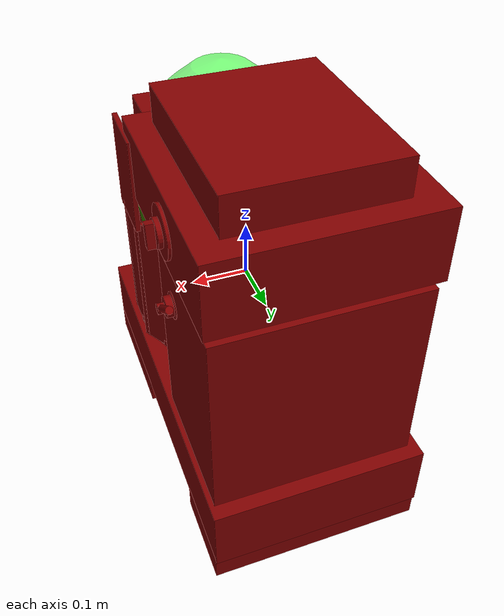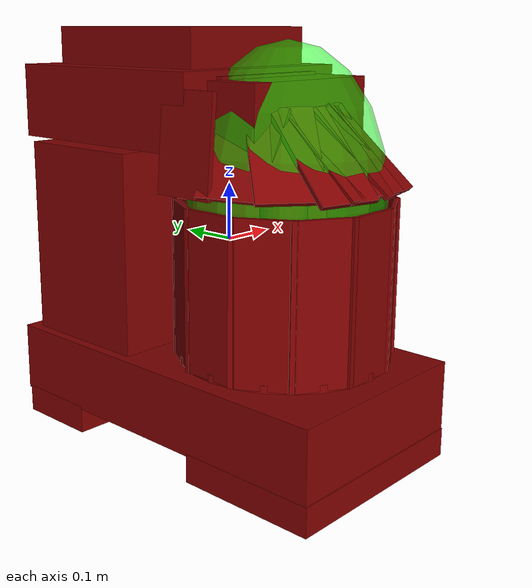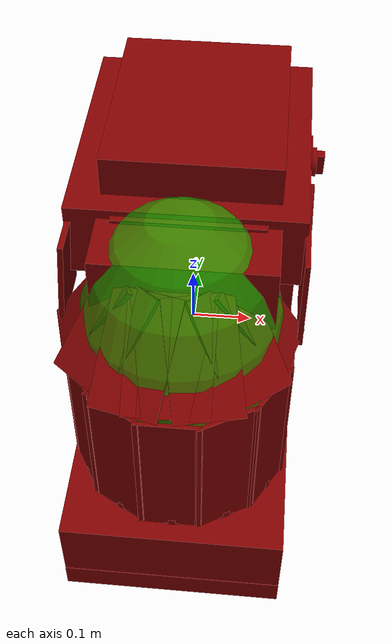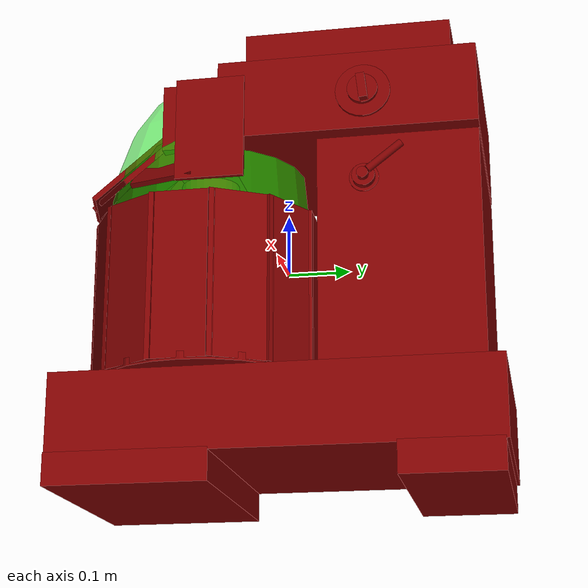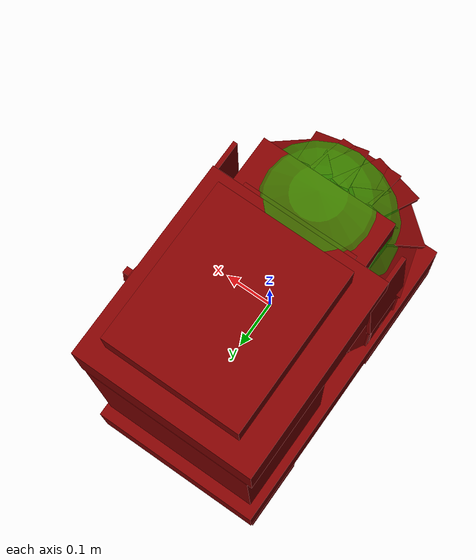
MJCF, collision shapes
<?xml version='1.0' encoding='UTF-8'?>
<mujoco model="model">
  <option timestep="0.002" gravity="0.0 0.0 -9.81"/>
  <compiler angle="radian"/>
  <asset>
    <mesh file="visuals/blender.obj" name="blender_vis"/>
    <mesh file="visuals/bowl.obj" name="bowl_vis"/>
    <mesh file="visuals/button_head_lock.obj" name="button_head_lock_vis"/>
    <mesh file="visuals/head.obj" name="head_vis"/>
    <mesh file="visuals/knob_speed.obj" name="knob_speed_vis"/>
    <mesh file="visuals/Body001.obj" name="Body001_vis"/>
    <texture file="visuals/T_BC001.png" name="Body001_material" type="2d"/>
    <material name="Body001_material" rgba="1 1 1 1.0" texture="Body001_material" shininess="0.5" specular="1"/>
    <texture file="visuals/T_BC001.png" name="bowl_material" type="2d"/>
    <material name="bowl_material" rgba="1 1 1 1.0" texture="bowl_material" shininess="0.5" specular="2"/>
    <texture file="visuals/T_BC001.png" name="button_head_lock_material" type="2d"/>
    <material name="button_head_lock_material" rgba="1 1 1 1.0" texture="button_head_lock_material" shininess="0.5" specular="0.3103448502657381"/>
    <texture file="visuals/T_BC001.png" name="head_material" type="2d"/>
    <material name="head_material" rgba="1 1 1 1.0" texture="head_material" shininess="0.5" specular="1"/>
    <texture file="visuals/T_BC001.png" name="blender_material" type="2d"/>
    <material name="blender_material" rgba="1 1 1 1.0" texture="blender_material" shininess="0.5" specular="2"/>
    <texture file="visuals/T_BC001.png" name="knob_speed_material" type="2d"/>
    <material name="knob_speed_material" rgba="1 1 1 1.0" texture="knob_speed_material" shininess="0.5" specular="0.3103448502657381"/>
  </asset>
  <default>
    <default class="visual">
      <geom conaffinity="0" contype="0" group="1" type="mesh"/>
    </default>
    <default class="collision">
      <geom group="0" rgba="0.5 0 0 0.5"/>
    </default>
    <default class="spawn">
      <geom group="0" rgba="1 1 1 0.5" contype="0" conaffinity="0"/>
      <site group="0" rgba="1 1 1 0.5"/>
    </default>
    <default class="region">
      <geom group="1" conaffinity="0" contype="0" rgba="0 1 0 0"/>
    </default>
  </default>
  <worldbody>
    <body>
      <body name="object">
        <geom mesh="Body001_vis" type="mesh" solimp="0.998 0.998 0.001" solref="0.001 1" friction="0.95 0.3 0.1" class="visual" material="Body001_material"/>
        <geom type="box" pos="-0.00267090 0.20007269 -0.01686699" size="0.17640313506126404 0.12497478723526001 0.17823748290538788" quat="1.0 0.0 0.0 0.0" class="collision"/>
        <geom type="box" pos="-0.00745859 0.00587236 -0.25808811" size="0.1895003318786621 0.34524524211883545 0.06353159993886948" quat="1.0 0.0 0.0 0.0" class="collision"/>
        <geom type="box" pos="-0.00745859 -0.21437366 -0.34285158" size="0.1895015686750412 0.1265411376953125 0.02537618577480316" quat="1.0 0.0 0.0 0.0" class="collision"/>
        <geom type="box" pos="-0.00745859 0.26803687 -0.34273580" size="0.1895015686750412 0.07797617465257645 0.02537618577480316" quat="1.0 0.0 0.0 0.0" class="collision"/>
        <geom type="cylinder" pos="0.16785968 0.14808685 0.09184745" size="0.022957801818847656 0.007240905426442623" quat="0.7071068286895752 -0.0 0.7071067690849304 0.0" class="collision"/>
        <body name="bowl">
          <geom mesh="bowl_vis" type="mesh" solimp="0.998 0.998 0.001" solref="0.001 1" friction="0.95 0.3 0.1" class="visual" material="bowl_material"/>
          <geom type="cylinder" pos="-0.00670028 -0.13489270 -0.17508253" size="0.1814662218093872 0.006578970700502396" quat="1.0 0.0 0.0 5.960464477539063e-08" class="collision"/>
          <geom type="box" pos="-0.00315750 0.04243004 -0.04335925" size="0.05319305509328842 0.0033536939881742 0.13530996441841125" quat="1.0 0.0 0.0 0.0" class="collision"/>
          <geom type="box" pos="0.08502930 0.01690198 -0.04335925" size="0.05319305881857872 0.0033536935225129128 0.13530996441841125" quat="0.9659258127212524 0.0 0.0 -0.2588191628456116" class="collision"/>
          <geom type="box" pos="0.14863720 -0.04929943 -0.04335924" size="0.05319305881857872 0.003353693289682269 0.13530994951725006" quat="0.866025447845459 0.0 0.0 -0.4999999701976776" class="collision"/>
          <geom type="box" pos="0.17062255 -0.13843551 -0.04335925" size="0.003353703301399946 0.05319298431277275 0.13530996441841125" quat="1.0 0.0 0.0 0.0" class="collision"/>
          <geom type="box" pos="0.14509442 -0.22662228 -0.04335925" size="0.05319305881857872 0.0033536935225129128 0.13530996441841125" quat="0.49999988079071045 0.0 0.0 -0.8660255074501038" class="collision"/>
          <geom type="box" pos="0.07889302 -0.29023018 -0.04335925" size="0.05319306254386902 0.003353693289682269 0.13530996441841125" quat="0.2588190734386444 0.0 0.0 -0.9659258127212524" class="collision"/>
          <geom type="box" pos="-0.01024313 -0.31221551 -0.04335925" size="0.05319305509328842 0.0033537084236741066 0.13530996441841125" quat="1.0 0.0 0.0 0.0" class="collision"/>
          <geom type="box" pos="-0.09842989 -0.28668737 -0.04335925" size="0.05319306254386902 0.0033536935225129128 0.13530996441841125" quat="0.2588190734386444 0.0 0.0 0.9659258127212524" class="collision"/>
          <geom type="box" pos="-0.16203778 -0.22048596 -0.04335925" size="0.05319305509328842 0.003353693289682269 0.13530996441841125" quat="0.5000000596046448 0.0 0.0 0.8660253882408142" class="collision"/>
          <geom type="box" pos="-0.18402312 -0.13134995 -0.04335925" size="0.003353716107085347 0.05319303646683693 0.13530996441841125" quat="1.0 0.0 0.0 0.0" class="collision"/>
          <geom type="box" pos="-0.15849491 -0.04316300 -0.04335925" size="0.05319305881857872 0.0033536935225129128 0.13530996441841125" quat="0.8660256266593933 0.0 0.0 0.49999964237213135" class="collision"/>
          <geom type="box" pos="-0.09229353 0.02044480 -0.04335925" size="0.05319305509328842 0.003353693289682269 0.13530996441841125" quat="0.9659258723258972 0.0 0.0 0.25881892442703247" class="collision"/>
          <geom name="reg_bowl" type="ellipsoid" pos="-0.00670028 -0.13489270 0.09177814" size="0.16452902555465698 0.16766422986984253 0.2566817104816437" rgba="0 1 0 0.5" class="region"/>
        </body>
        <body name="button_head_lock">
          <joint axis="-1.0 0.0 0.0" pos="0.18252964 0.14910948 0.09110717" limited="true" name="button_head_lock_joint" range="0.0 1.3089969389957472" type="hinge" damping="1" frictionloss="1" armature=".01" stiffness="0.05"/>
          <geom mesh="button_head_lock_vis" type="mesh" solimp="0.998 0.998 0.001" solref="0.001 1" friction="0.95 0.3 0.1" class="visual" material="button_head_lock_material"/>
          <geom class="collision" type="cylinder" pos="0.19281889 0.18186405 0.11706350" size="0.006224953569471836 0.033076509833335876" quat="0.896519124507904 -0.4430050551891327 2.6802243979773266e-08 -5.3240494679585026e-08" name="button_head_lock_main"/>
          <geom type="cylinder" pos="0.19314839 0.14799933 0.09103338" size="0.008919178508222103 0.0055654654279351234" quat="0.6339347958564758 -0.31325194239616394 -0.633934736251831 0.313251793384552" class="collision"/>
          <geom type="cylinder" pos="0.18127180 0.14808685 0.09184745" size="0.017771020531654358 0.005604991223663092" quat="0.7071068286895752 -0.0 0.7071067690849304 0.0" class="collision"/>
        </body>
        <body name="head">
          <joint axis="-1.0 0.0 0.0" pos="0.00391560 0.32297707 0.17175800" limited="true" name="head_joint" range="0.0 1.5707963267948966" type="hinge" damping="1" frictionloss="1" armature=".01" stiffness="0.05"/>
          <geom mesh="head_vis" type="mesh" solimp="0.998 0.998 0.001" solref="0.001 1" friction="0.95 0.3 0.1" class="visual" material="head_material"/>
          <geom type="box" pos="-0.00563701 0.12132862 0.23743494" size="0.18423785269260406 0.20407572388648987 0.06432920694351196" quat="1.0 0.0 0.0 0.0" class="collision"/>
          <geom type="box" pos="-0.00011037 -0.13279633 0.23134264" size="0.13936132192611694 0.04869908466935158 0.055304598063230515" quat="1.0 0.0 0.0 0.0" class="collision"/>
          <geom type="box" pos="-0.00011037 0.11888495 0.31511831" size="0.13787944614887238 0.1650116741657257 0.05209336429834366" quat="1.0 0.0 0.0 0.0" class="collision"/>
          <geom type="box" pos="-0.00011037 -0.08365140 0.27762929" size="0.11760880798101425 0.009555584751069546 0.014604005962610245" quat="1.0 0.0 0.0 0.0" class="collision"/>
          <geom type="box" pos="-0.02386878 -0.25066048 0.17795789" size="0.05469752103090286 0.0042932783253490925 0.0926520973443985" quat="0.9129106998443604 -0.4081593453884125 3.326717745721908e-08 1.4873648979119025e-08" class="collision"/>
          <geom type="box" pos="-0.11067838 -0.21696413 0.18110809" size="0.054697513580322266 0.00429327879101038 0.08732059597969055" quat="0.8775176405906677 -0.345663458108902 0.12181943655014038 -0.3092564642429352" class="collision"/>
          <geom type="box" pos="-0.19022870 -0.08831722 0.19311045" size="0.05469752103090286 0.00429327879101038 0.08266056329011917" quat="0.7065261006355286 -0.02865460142493248 0.028654610738158226 -0.7065258026123047" class="collision"/>
          <geom type="box" pos="-0.13963871 -0.15884182 0.18049935" size="0.05469752103090286 0.00429327879101038 0.08321232348680496" quat="0.5672957897186279 0.2008899748325348 0.2665899991989136 0.752826988697052" class="collision"/>
          <geom type="box" pos="-0.06138411 -0.25066048 0.17795789" size="0.05469752475619316 0.0042932783253490925 0.0926520973443985" quat="0.9145877361297607 -0.3882194459438324 0.044231995940208435 -0.10420416295528412" class="collision"/>
          <geom type="box" pos="0.03733534 -0.25066048 0.17795789" size="0.05469753220677376 0.0042932783253490925 0.0926520973443985" quat="0.38821929693222046 0.9145877957344055 0.10420418530702591 0.04423201084136963" class="collision"/>
          <geom type="box" pos="0.11714215 -0.15928692 0.17850527" size="0.05469752103090286 0.0042932783253490925 0.08577822893857956" quat="0.20089010894298553 -0.5672956109046936 0.752826988697052 -0.26659026741981506" class="collision"/>
          <geom type="box" pos="0.17934410 -0.09389382 0.19120842" size="0.05469752103090286 0.00429327879101038 0.08453971147537231" quat="0.0035106476861983538 0.7070980668067932 0.7070980668067932 0.0035105894785374403" class="collision"/>
          <geom type="box" pos="0.08781093 -0.21843195 0.17908755" size="0.05469752103090286 0.0042932783253490925 0.09008330851793289" quat="0.34566324949264526 0.8775177001953125 0.30925655364990234 0.1218193769454956" class="collision"/>
          <geom type="box" pos="-0.00017999 -0.25066048 0.17795789" size="0.05469752103090286 0.0042932783253490925 0.0926520973443985" quat="0.40815937519073486 0.9129106998443604 7.852231753702199e-09 -1.7562717502528358e-08" class="collision"/>
          <geom type="cylinder" pos="0.18021585 0.14884874 0.23393658" size="0.04312162473797798 0.003263219492509961" quat="0.7071068286895752 -0.0 0.7071067690849304 0.0" class="collision"/>
          <body name="blender">
            <joint axis="0.0 0.0 1.0" pos="-0.01485415 -0.13735706 0.16844827" limited="false" name="blender_joint" range="0 360" type="hinge" damping="1" frictionloss="1" armature=".01" stiffness="0.05"/>
            <geom mesh="blender_vis" type="mesh" solimp="0.998 0.998 0.001" solref="0.001 1" friction="0.95 0.3 0.1" class="visual" material="blender_material"/>
            <geom type="cylinder" pos="-0.01485426 -0.13735706 0.02527136" size="0.03977133706212044 0.12904568016529083" quat="1.0 0.0 0.0 5.960464477539063e-08" class="collision"/>
            <geom type="cylinder" pos="-0.01485426 -0.13735706 0.15753005" size="0.04861937835812569 0.011234770528972149" quat="1.0 0.0 0.0 5.960464477539063e-08" class="collision"/>
          </body>
          <body name="knob_speed">
            <joint axis="-1.0 0.0 0.0" pos="0.19205622 0.14881469 0.23358227" limited="true" name="knob_speed_joint" range="0.0 3.141592653589793" type="hinge" damping="0.05" armature="0.001"/>
            <geom mesh="knob_speed_vis" type="mesh" solimp="0.998 0.998 0.001" solref="0.001 1" friction="0.95 0.3 0.1" class="visual" material="knob_speed_material"/>
            <geom type="cylinder" pos="0.18819046 0.14920551 0.23384427" size="0.023875655606389046 0.0037164839450269938" quat="0.25031644105911255 -0.6613181233406067 0.25031664967536926 -0.6613180637359619" class="collision"/>
            <geom class="collision" type="box" pos="0.19850100 0.14973517 0.23293169" size="0.006722669582813978 0.006722669582813978 0.020335135981440544" quat="0.9984014630317688 0.05652029812335968 3.368872292242031e-09 5.9509360994525196e-08" name="knob_speed_main"/>
          </body>
        </body>
        <geom class="region" name="reg_main" type="box" pos="-0.006446725 0.0 0.0" size="0.19106705499999999 0.34600009 0.36599977"/>
      </body>
    </body>
  </worldbody>
  <actuator>
    <motor name="button_head_lock_joint_actuator" joint="button_head_lock_joint" gear="0.5"/>
    <motor name="head_joint_actuator" joint="head_joint" gear="0.5"/>
    <motor name="blender_joint_actuator" joint="blender_joint" gear="10"/>
    <motor name="knob_speed_joint_actuator" joint="knob_speed_joint" gear="0.5"/>
  </actuator>
</mujoco>
